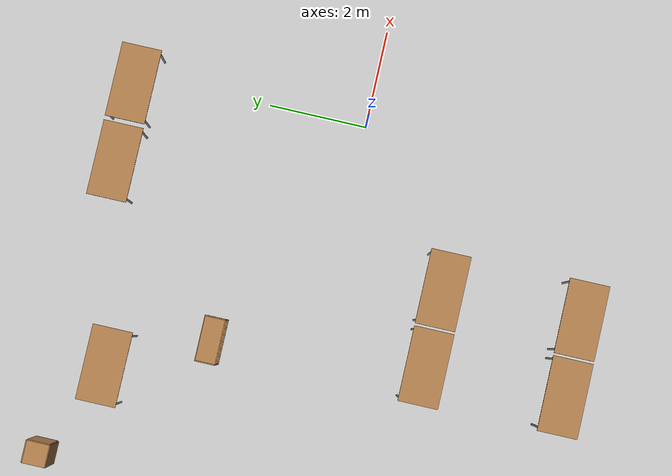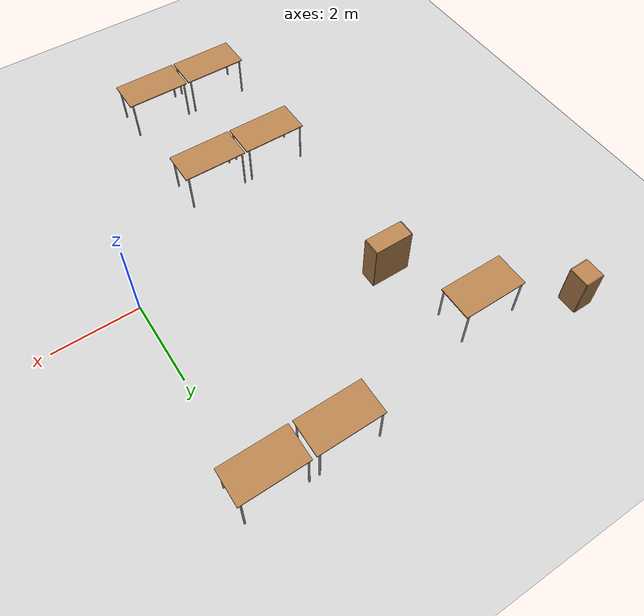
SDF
<sdf version="1.6">
 <world name="default">
  <model name="ground_plane">
   <static>1</static>
   <link name="link">
    <collision name="collision">
     <geometry><plane><normal>0 0 1</normal><size>100 100</size></plane></geometry>
     <surface>
      <contact><collide_bitmask>65535</collide_bitmask></contact>
      <friction><ode><mu>100</mu><mu2>50</mu2></ode></friction>
     </surface>
    </collision>
    <visual name="visual">
     <cast_shadows>0</cast_shadows>
     <geometry><plane><normal>0 0 1</normal><size>100 100</size></plane></geometry>
     <material>
      <script><uri>file://media/materials/scripts/gazebo.material</uri><name>Gazebo/Grey</name></script>
     </material>
    </visual>
   </link>
  </model>
  <model name="cabinet">
   <static>1</static>
   <link name="cabinet_bottom_plate">
    <inertial>
     <pose>0 0 -1 0 -0 0</pose>
     <inertia><ixx>2.05</ixx><ixy>0</ixy><ixz>0</ixz><iyy>2.05</iyy><iyz>0</iyz><izz>2.05</izz></inertia>
     <mass>25</mass>
    </inertial>
    <collision name="cabinet_bottom_plate_geom">
     <pose>0 0 0.01 0 -0 0</pose>
     <geometry><box><size>0.45 0.45 0.02</size></box></geometry>
    </collision>
    <visual name="cabinet_bottom_plate_geom_visual">
     <pose>0 0 0.01 0 -0 0</pose>
     <geometry><box><size>0.45 0.45 0.02</size></box></geometry>
     <material>
      <script><uri>file://media/materials/scripts/gazebo.material</uri><name>Gazebo/Wood</name></script>
     </material>
    </visual>
    <collision name="cabinet_bottom_plate_geom_cabinet_back_plate">
     <pose>0.235 0 0.51 0 -0 0</pose>
     <geometry><box><size>0.02 0.45 1.02</size></box></geometry>
    </collision>
    <visual name="cabinet_bottom_plate_geom_cabinet_back_plate_visual">
     <pose>0.235 0 0.51 0 -0 0</pose>
     <geometry><box><size>0.02 0.45 1.02</size></box></geometry>
     <material>
      <script><uri>file://media/materials/scripts/gazebo.material</uri><name>Gazebo/Wood</name></script>
     </material>
    </visual>
    <collision name="cabinet_bottom_plate_geom_cabinet_left_plate">
     <pose>0 0.235 0.51 0 -0 0</pose>
     <geometry><box><size>0.45 0.02 1.02</size></box></geometry>
    </collision>
    <visual name="cabinet_bottom_plate_geom_cabinet_left_plate_visual">
     <pose>0 0.235 0.51 0 -0 0</pose>
     <geometry><box><size>0.45 0.02 1.02</size></box></geometry>
     <material>
      <script><uri>file://media/materials/scripts/gazebo.material</uri><name>Gazebo/Wood</name></script>
     </material>
    </visual>
    <collision name="cabinet_bottom_plate_geom_cabinet_middle_plate">
     <pose>0 0 0.51 0 -0 0</pose>
     <geometry><box><size>0.45 0.45 0.02</size></box></geometry>
    </collision>
    <visual name="cabinet_bottom_plate_geom_cabinet_middle_plate_visual">
     <pose>0 0 0.51 0 -0 0</pose>
     <geometry><box><size>0.45 0.45 0.02</size></box></geometry>
     <material>
      <script><uri>file://media/materials/scripts/gazebo.material</uri><name>Gazebo/Wood</name></script>
     </material>
    </visual>
    <collision name="cabinet_bottom_plate_geom_cabinet_right_plate">
     <pose>0 -0.235 0.51 0 -0 0</pose>
     <geometry><box><size>0.45 0.02 1.02</size></box></geometry>
    </collision>
    <visual name="cabinet_bottom_plate_geom_cabinet_right_plate_visual">
     <pose>0 -0.235 0.51 0 -0 0</pose>
     <geometry><box><size>0.45 0.02 1.02</size></box></geometry>
     <material>
      <script><uri>file://media/materials/scripts/gazebo.material</uri><name>Gazebo/Wood</name></script>
     </material>
    </visual>
    <collision name="cabinet_bottom_plate_geom_cabinet_top_plate">
     <pose>0 0 1.01 0 -0 0</pose>
     <geometry><box><size>0.45 0.45 0.02</size></box></geometry>
    </collision>
    <visual name="cabinet_bottom_plate_geom_cabinet_top_plate_visual">
     <pose>0 0 1.01 0 -0 0</pose>
     <geometry><box><size>0.45 0.45 0.02</size></box></geometry>
     <material>
      <script><uri>file://media/materials/scripts/gazebo.material</uri><name>Gazebo/Wood</name></script>
     </material>
    </visual>
   </link>
   <pose>-7.79073 4.85276 0 0 -0 0</pose>
  </model>
  <model name="bookshelf">
   <static>1</static>
   <link name="link">
    <inertial><mass>1</mass></inertial>
    <collision name="back">
     <pose>0 0.005 0.6 0 -0 0</pose>
     <geometry><box><size>0.9 0.01 1.2</size></box></geometry>
    </collision>
    <visual name="visual1">
     <pose>0 0.005 0.6 0 -0 0</pose>
     <geometry><box><size>0.9 0.01 1.2</size></box></geometry>
     <material>
      <script><uri>file://media/materials/scripts/gazebo.material</uri><name>Gazebo/Wood</name></script>
     </material>
    </visual>
    <collision name="left_side">
     <pose>0.45 -0.195 0.6 0 -0 0</pose>
     <geometry><box><size>0.02 0.4 1.2</size></box></geometry>
    </collision>
    <visual name="visual2">
     <pose>0.45 -0.195 0.6 0 -0 0</pose>
     <geometry><box><size>0.02 0.4 1.2</size></box></geometry>
     <material>
      <script><uri>file://media/materials/scripts/gazebo.material</uri><name>Gazebo/Wood</name></script>
     </material>
    </visual>
    <collision name="right_side">
     <pose>-0.45 -0.195 0.6 0 -0 0</pose>
     <geometry><box><size>0.02 0.4 1.2</size></box></geometry>
    </collision>
    <visual name="visual3">
     <pose>-0.45 -0.195 0.6 0 -0 0</pose>
     <geometry><box><size>0.02 0.4 1.2</size></box></geometry>
     <material>
      <script><uri>file://media/materials/scripts/gazebo.material</uri><name>Gazebo/Wood</name></script>
     </material>
    </visual>
    <collision name="bottom">
     <pose>0 -0.195 0.03 0 -0 0</pose>
     <geometry><box><size>0.88 0.4 0.06</size></box></geometry>
    </collision>
    <visual name="visual4">
     <pose>0 -0.195 0.03 0 -0 0</pose>
     <geometry><box><size>0.88 0.4 0.06</size></box></geometry>
     <material>
      <script><uri>file://media/materials/scripts/gazebo.material</uri><name>Gazebo/Wood</name></script>
     </material>
    </visual>
    <collision name="top">
     <pose>0 -0.195 1.19 0 -0 0</pose>
     <geometry><box><size>0.88 0.4 0.02</size></box></geometry>
    </collision>
    <visual name="visual5">
     <pose>0 -0.195 1.19 0 -0 0</pose>
     <geometry><box><size>0.88 0.4 0.02</size></box></geometry>
     <material>
      <script><uri>file://media/materials/scripts/gazebo.material</uri><name>Gazebo/Wood</name></script>
     </material>
    </visual>
    <collision name="low_shelf">
     <pose>0 -0.195 0.43 0 -0 0</pose>
     <geometry><box><size>0.88 0.4 0.02</size></box></geometry>
    </collision>
    <visual name="visual6">
     <pose>0 -0.195 0.43 0 -0 0</pose>
     <geometry><box><size>0.88 0.4 0.02</size></box></geometry>
     <material>
      <script><uri>file://media/materials/scripts/gazebo.material</uri><name>Gazebo/Wood</name></script>
     </material>
    </visual>
    <collision name="high_shelf">
     <pose>0 -0.195 0.8 0 -0 0</pose>
     <geometry><box><size>0.88 0.4 0.02</size></box></geometry>
    </collision>
    <visual name="visual7">
     <pose>0 -0.195 0.8 0 -0 0</pose>
     <geometry><box><size>0.88 0.4 0.02</size></box></geometry>
     <material>
      <script><uri>file://media/materials/scripts/gazebo.material</uri><name>Gazebo/Wood</name></script>
     </material>
    </visual>
   </link>
   <pose>-4.88239 2.23385 0 0 -0 0</pose>
  </model>
  <model name="table">
   <static>1</static>
   <link name="link">
    <collision name="surface">
     <pose>0 0 1 0 -0 0</pose>
     <geometry><box><size>1.5 0.8 0.03</size></box></geometry>
     <surface><friction><ode><mu>0.6</mu><mu2>0.6</mu2></ode></friction></surface>
    </collision>
    <visual name="visual1">
     <pose>0 0 1 0 -0 0</pose>
     <geometry><box><size>1.5 0.8 0.03</size></box></geometry>
     <material>
      <script><uri>file://media/materials/scripts/gazebo.material</uri><name>Gazebo/Wood</name></script>
     </material>
    </visual>
    <collision name="front_left_leg">
     <pose>0.68 0.38 0.5 0 -0 0</pose>
     <geometry><cylinder><radius>0.02</radius><length>1</length></cylinder></geometry>
    </collision>
    <visual name="front_left_leg">
     <pose>0.68 0.38 0.5 0 -0 0</pose>
     <geometry><cylinder><radius>0.02</radius><length>1</length></cylinder></geometry>
     <material>
      <script><uri>file://media/materials/scripts/gazebo.material</uri><name>Gazebo/Grey</name></script>
     </material>
    </visual>
    <collision name="front_right_leg">
     <pose>0.68 -0.38 0.5 0 -0 0</pose>
     <geometry><cylinder><radius>0.02</radius><length>1</length></cylinder></geometry>
    </collision>
    <visual name="front_right_leg">
     <pose>0.68 -0.38 0.5 0 -0 0</pose>
     <geometry><cylinder><radius>0.02</radius><length>1</length></cylinder></geometry>
     <material>
      <script><uri>file://media/materials/scripts/gazebo.material</uri><name>Gazebo/Grey</name></script>
     </material>
    </visual>
    <collision name="back_right_leg">
     <pose>-0.68 -0.38 0.5 0 -0 0</pose>
     <geometry><cylinder><radius>0.02</radius><length>1</length></cylinder></geometry>
    </collision>
    <visual name="back_right_leg">
     <pose>-0.68 -0.38 0.5 0 -0 0</pose>
     <geometry><cylinder><radius>0.02</radius><length>1</length></cylinder></geometry>
     <material>
      <script><uri>file://media/materials/scripts/gazebo.material</uri><name>Gazebo/Grey</name></script>
     </material>
    </visual>
    <collision name="back_left_leg">
     <pose>-0.68 0.38 0.5 0 -0 0</pose>
     <geometry><cylinder><radius>0.02</radius><length>1</length></cylinder></geometry>
    </collision>
    <visual name="back_left_leg">
     <pose>-0.68 0.38 0.5 0 -0 0</pose>
     <geometry><cylinder><radius>0.02</radius><length>1</length></cylinder></geometry>
     <material>
      <script><uri>file://media/materials/scripts/gazebo.material</uri><name>Gazebo/Grey</name></script>
     </material>
    </visual>
   </link>
   <pose>-5.82965 3.95107 0 0 -0 0</pose>
  </model>
  <model name="table_0">
   <static>1</static>
   <link name="link">
    <collision name="surface">
     <pose>0 0 1 0 -0 0</pose>
     <geometry><box><size>1.5 0.8 0.03</size></box></geometry>
     <surface><friction><ode><mu>0.6</mu><mu2>0.6</mu2></ode></friction></surface>
    </collision>
    <visual name="visual1">
     <pose>0 0 1 0 -0 0</pose>
     <geometry><box><size>1.5 0.8 0.03</size></box></geometry>
     <material>
      <script><uri>file://media/materials/scripts/gazebo.material</uri><name>Gazebo/Wood</name></script>
     </material>
    </visual>
    <collision name="front_left_leg">
     <pose>0.68 0.38 0.5 0 -0 0</pose>
     <geometry><cylinder><radius>0.02</radius><length>1</length></cylinder></geometry>
    </collision>
    <visual name="front_left_leg">
     <pose>0.68 0.38 0.5 0 -0 0</pose>
     <geometry><cylinder><radius>0.02</radius><length>1</length></cylinder></geometry>
     <material>
      <script><uri>file://media/materials/scripts/gazebo.material</uri><name>Gazebo/Grey</name></script>
     </material>
    </visual>
    <collision name="front_right_leg">
     <pose>0.68 -0.38 0.5 0 -0 0</pose>
     <geometry><cylinder><radius>0.02</radius><length>1</length></cylinder></geometry>
    </collision>
    <visual name="front_right_leg">
     <pose>0.68 -0.38 0.5 0 -0 0</pose>
     <geometry><cylinder><radius>0.02</radius><length>1</length></cylinder></geometry>
     <material>
      <script><uri>file://media/materials/scripts/gazebo.material</uri><name>Gazebo/Grey</name></script>
     </material>
    </visual>
    <collision name="back_right_leg">
     <pose>-0.68 -0.38 0.5 0 -0 0</pose>
     <geometry><cylinder><radius>0.02</radius><length>1</length></cylinder></geometry>
    </collision>
    <visual name="back_right_leg">
     <pose>-0.68 -0.38 0.5 0 -0 0</pose>
     <geometry><cylinder><radius>0.02</radius><length>1</length></cylinder></geometry>
     <material>
      <script><uri>file://media/materials/scripts/gazebo.material</uri><name>Gazebo/Grey</name></script>
     </material>
    </visual>
    <collision name="back_left_leg">
     <pose>-0.68 0.38 0.5 0 -0 0</pose>
     <geometry><cylinder><radius>0.02</radius><length>1</length></cylinder></geometry>
    </collision>
    <visual name="back_left_leg">
     <pose>-0.68 0.38 0.5 0 -0 0</pose>
     <geometry><cylinder><radius>0.02</radius><length>1</length></cylinder></geometry>
     <material>
      <script><uri>file://media/materials/scripts/gazebo.material</uri><name>Gazebo/Grey</name></script>
     </material>
    </visual>
   </link>
   <pose>-0.288993 4.6714 0 0 -0 0</pose>
  </model>
  <model name="table_1">
   <static>1</static>
   <link name="link">
    <collision name="surface">
     <pose>0 0 1 0 -0 0</pose>
     <geometry><box><size>1.5 0.8 0.03</size></box></geometry>
     <surface><friction><ode><mu>0.6</mu><mu2>0.6</mu2></ode></friction></surface>
    </collision>
    <visual name="visual1">
     <pose>0 0 1 0 -0 0</pose>
     <geometry><box><size>1.5 0.8 0.03</size></box></geometry>
     <material>
      <script><uri>file://media/materials/scripts/gazebo.material</uri><name>Gazebo/Wood</name></script>
     </material>
    </visual>
    <collision name="front_left_leg">
     <pose>0.68 0.38 0.5 0 -0 0</pose>
     <geometry><cylinder><radius>0.02</radius><length>1</length></cylinder></geometry>
    </collision>
    <visual name="front_left_leg">
     <pose>0.68 0.38 0.5 0 -0 0</pose>
     <geometry><cylinder><radius>0.02</radius><length>1</length></cylinder></geometry>
     <material>
      <script><uri>file://media/materials/scripts/gazebo.material</uri><name>Gazebo/Grey</name></script>
     </material>
    </visual>
    <collision name="front_right_leg">
     <pose>0.68 -0.38 0.5 0 -0 0</pose>
     <geometry><cylinder><radius>0.02</radius><length>1</length></cylinder></geometry>
    </collision>
    <visual name="front_right_leg">
     <pose>0.68 -0.38 0.5 0 -0 0</pose>
     <geometry><cylinder><radius>0.02</radius><length>1</length></cylinder></geometry>
     <material>
      <script><uri>file://media/materials/scripts/gazebo.material</uri><name>Gazebo/Grey</name></script>
     </material>
    </visual>
    <collision name="back_right_leg">
     <pose>-0.68 -0.38 0.5 0 -0 0</pose>
     <geometry><cylinder><radius>0.02</radius><length>1</length></cylinder></geometry>
    </collision>
    <visual name="back_right_leg">
     <pose>-0.68 -0.38 0.5 0 -0 0</pose>
     <geometry><cylinder><radius>0.02</radius><length>1</length></cylinder></geometry>
     <material>
      <script><uri>file://media/materials/scripts/gazebo.material</uri><name>Gazebo/Grey</name></script>
     </material>
    </visual>
    <collision name="back_left_leg">
     <pose>-0.68 0.38 0.5 0 -0 0</pose>
     <geometry><cylinder><radius>0.02</radius><length>1</length></cylinder></geometry>
    </collision>
    <visual name="back_left_leg">
     <pose>-0.68 0.38 0.5 0 -0 0</pose>
     <geometry><cylinder><radius>0.02</radius><length>1</length></cylinder></geometry>
     <material>
      <script><uri>file://media/materials/scripts/gazebo.material</uri><name>Gazebo/Grey</name></script>
     </material>
    </visual>
   </link>
   <pose>-1.87609 4.67031 0 0 -0 0</pose>
  </model>
  <model name="table_2">
   <static>1</static>
   <link name="link">
    <collision name="surface">
     <pose>0 0 1 0 -0 0</pose>
     <geometry><box><size>1.5 0.8 0.03</size></box></geometry>
     <surface><friction><ode><mu>0.6</mu><mu2>0.6</mu2></ode></friction></surface>
    </collision>
    <visual name="visual1">
     <pose>0 0 1 0 -0 0</pose>
     <geometry><box><size>1.5 0.8 0.03</size></box></geometry>
     <material>
      <script><uri>file://media/materials/scripts/gazebo.material</uri><name>Gazebo/Wood</name></script>
     </material>
    </visual>
    <collision name="front_left_leg">
     <pose>0.68 0.38 0.5 0 -0 0</pose>
     <geometry><cylinder><radius>0.02</radius><length>1</length></cylinder></geometry>
    </collision>
    <visual name="front_left_leg">
     <pose>0.68 0.38 0.5 0 -0 0</pose>
     <geometry><cylinder><radius>0.02</radius><length>1</length></cylinder></geometry>
     <material>
      <script><uri>file://media/materials/scripts/gazebo.material</uri><name>Gazebo/Grey</name></script>
     </material>
    </visual>
    <collision name="front_right_leg">
     <pose>0.68 -0.38 0.5 0 -0 0</pose>
     <geometry><cylinder><radius>0.02</radius><length>1</length></cylinder></geometry>
    </collision>
    <visual name="front_right_leg">
     <pose>0.68 -0.38 0.5 0 -0 0</pose>
     <geometry><cylinder><radius>0.02</radius><length>1</length></cylinder></geometry>
     <material>
      <script><uri>file://media/materials/scripts/gazebo.material</uri><name>Gazebo/Grey</name></script>
     </material>
    </visual>
    <collision name="back_right_leg">
     <pose>-0.68 -0.38 0.5 0 -0 0</pose>
     <geometry><cylinder><radius>0.02</radius><length>1</length></cylinder></geometry>
    </collision>
    <visual name="back_right_leg">
     <pose>-0.68 -0.38 0.5 0 -0 0</pose>
     <geometry><cylinder><radius>0.02</radius><length>1</length></cylinder></geometry>
     <material>
      <script><uri>file://media/materials/scripts/gazebo.material</uri><name>Gazebo/Grey</name></script>
     </material>
    </visual>
    <collision name="back_left_leg">
     <pose>-0.68 0.38 0.5 0 -0 0</pose>
     <geometry><cylinder><radius>0.02</radius><length>1</length></cylinder></geometry>
    </collision>
    <visual name="back_left_leg">
     <pose>-0.68 0.38 0.5 0 -0 0</pose>
     <geometry><cylinder><radius>0.02</radius><length>1</length></cylinder></geometry>
     <material>
      <script><uri>file://media/materials/scripts/gazebo.material</uri><name>Gazebo/Grey</name></script>
     </material>
    </visual>
   </link>
   <pose>-4.46585 -2.17895 0 0 -0 0</pose>
  </model>
  <model name="table_3">
   <static>1</static>
   <link name="link">
    <collision name="surface">
     <pose>0 0 1 0 -0 0</pose>
     <geometry><box><size>1.5 0.8 0.03</size></box></geometry>
     <surface><friction><ode><mu>0.6</mu><mu2>0.6</mu2></ode></friction></surface>
    </collision>
    <visual name="visual1">
     <pose>0 0 1 0 -0 0</pose>
     <geometry><box><size>1.5 0.8 0.03</size></box></geometry>
     <material>
      <script><uri>file://media/materials/scripts/gazebo.material</uri><name>Gazebo/Wood</name></script>
     </material>
    </visual>
    <collision name="front_left_leg">
     <pose>0.68 0.38 0.5 0 -0 0</pose>
     <geometry><cylinder><radius>0.02</radius><length>1</length></cylinder></geometry>
    </collision>
    <visual name="front_left_leg">
     <pose>0.68 0.38 0.5 0 -0 0</pose>
     <geometry><cylinder><radius>0.02</radius><length>1</length></cylinder></geometry>
     <material>
      <script><uri>file://media/materials/scripts/gazebo.material</uri><name>Gazebo/Grey</name></script>
     </material>
    </visual>
    <collision name="front_right_leg">
     <pose>0.68 -0.38 0.5 0 -0 0</pose>
     <geometry><cylinder><radius>0.02</radius><length>1</length></cylinder></geometry>
    </collision>
    <visual name="front_right_leg">
     <pose>0.68 -0.38 0.5 0 -0 0</pose>
     <geometry><cylinder><radius>0.02</radius><length>1</length></cylinder></geometry>
     <material>
      <script><uri>file://media/materials/scripts/gazebo.material</uri><name>Gazebo/Grey</name></script>
     </material>
    </visual>
    <collision name="back_right_leg">
     <pose>-0.68 -0.38 0.5 0 -0 0</pose>
     <geometry><cylinder><radius>0.02</radius><length>1</length></cylinder></geometry>
    </collision>
    <visual name="back_right_leg">
     <pose>-0.68 -0.38 0.5 0 -0 0</pose>
     <geometry><cylinder><radius>0.02</radius><length>1</length></cylinder></geometry>
     <material>
      <script><uri>file://media/materials/scripts/gazebo.material</uri><name>Gazebo/Grey</name></script>
     </material>
    </visual>
    <collision name="back_left_leg">
     <pose>-0.68 0.38 0.5 0 -0 0</pose>
     <geometry><cylinder><radius>0.02</radius><length>1</length></cylinder></geometry>
    </collision>
    <visual name="back_left_leg">
     <pose>-0.68 0.38 0.5 0 -0 0</pose>
     <geometry><cylinder><radius>0.02</radius><length>1</length></cylinder></geometry>
     <material>
      <script><uri>file://media/materials/scripts/gazebo.material</uri><name>Gazebo/Grey</name></script>
     </material>
    </visual>
   </link>
   <pose>-2.91567 -2.17764 0 0 -0 0</pose>
  </model>
  <model name="table_4">
   <static>1</static>
   <link name="link">
    <collision name="surface">
     <pose>0 0 1 0 -0 0</pose>
     <geometry><box><size>1.5 0.8 0.03</size></box></geometry>
     <surface><friction><ode><mu>0.6</mu><mu2>0.6</mu2></ode></friction></surface>
    </collision>
    <visual name="visual1">
     <pose>0 0 1 0 -0 0</pose>
     <geometry><box><size>1.5 0.8 0.03</size></box></geometry>
     <material>
      <script><uri>file://media/materials/scripts/gazebo.material</uri><name>Gazebo/Wood</name></script>
     </material>
    </visual>
    <collision name="front_left_leg">
     <pose>0.68 0.38 0.5 0 -0 0</pose>
     <geometry><cylinder><radius>0.02</radius><length>1</length></cylinder></geometry>
    </collision>
    <visual name="front_left_leg">
     <pose>0.68 0.38 0.5 0 -0 0</pose>
     <geometry><cylinder><radius>0.02</radius><length>1</length></cylinder></geometry>
     <material>
      <script><uri>file://media/materials/scripts/gazebo.material</uri><name>Gazebo/Grey</name></script>
     </material>
    </visual>
    <collision name="front_right_leg">
     <pose>0.68 -0.38 0.5 0 -0 0</pose>
     <geometry><cylinder><radius>0.02</radius><length>1</length></cylinder></geometry>
    </collision>
    <visual name="front_right_leg">
     <pose>0.68 -0.38 0.5 0 -0 0</pose>
     <geometry><cylinder><radius>0.02</radius><length>1</length></cylinder></geometry>
     <material>
      <script><uri>file://media/materials/scripts/gazebo.material</uri><name>Gazebo/Grey</name></script>
     </material>
    </visual>
    <collision name="back_right_leg">
     <pose>-0.68 -0.38 0.5 0 -0 0</pose>
     <geometry><cylinder><radius>0.02</radius><length>1</length></cylinder></geometry>
    </collision>
    <visual name="back_right_leg">
     <pose>-0.68 -0.38 0.5 0 -0 0</pose>
     <geometry><cylinder><radius>0.02</radius><length>1</length></cylinder></geometry>
     <material>
      <script><uri>file://media/materials/scripts/gazebo.material</uri><name>Gazebo/Grey</name></script>
     </material>
    </visual>
    <collision name="back_left_leg">
     <pose>-0.68 0.38 0.5 0 -0 0</pose>
     <geometry><cylinder><radius>0.02</radius><length>1</length></cylinder></geometry>
    </collision>
    <visual name="back_left_leg">
     <pose>-0.68 0.38 0.5 0 -0 0</pose>
     <geometry><cylinder><radius>0.02</radius><length>1</length></cylinder></geometry>
     <material>
      <script><uri>file://media/materials/scripts/gazebo.material</uri><name>Gazebo/Grey</name></script>
     </material>
    </visual>
   </link>
   <pose>-4.42755 -4.94835 0 0 -0 0</pose>
  </model>
  <model name="table_5">
   <static>1</static>
   <link name="link">
    <collision name="surface">
     <pose>0 0 1 0 -0 0</pose>
     <geometry><box><size>1.5 0.8 0.03</size></box></geometry>
     <surface><friction><ode><mu>0.6</mu><mu2>0.6</mu2></ode></friction></surface>
    </collision>
    <visual name="visual1">
     <pose>0 0 1 0 -0 0</pose>
     <geometry><box><size>1.5 0.8 0.03</size></box></geometry>
     <material>
      <script><uri>file://media/materials/scripts/gazebo.material</uri><name>Gazebo/Wood</name></script>
     </material>
    </visual>
    <collision name="front_left_leg">
     <pose>0.68 0.38 0.5 0 -0 0</pose>
     <geometry><cylinder><radius>0.02</radius><length>1</length></cylinder></geometry>
    </collision>
    <visual name="front_left_leg">
     <pose>0.68 0.38 0.5 0 -0 0</pose>
     <geometry><cylinder><radius>0.02</radius><length>1</length></cylinder></geometry>
     <material>
      <script><uri>file://media/materials/scripts/gazebo.material</uri><name>Gazebo/Grey</name></script>
     </material>
    </visual>
    <collision name="front_right_leg">
     <pose>0.68 -0.38 0.5 0 -0 0</pose>
     <geometry><cylinder><radius>0.02</radius><length>1</length></cylinder></geometry>
    </collision>
    <visual name="front_right_leg">
     <pose>0.68 -0.38 0.5 0 -0 0</pose>
     <geometry><cylinder><radius>0.02</radius><length>1</length></cylinder></geometry>
     <material>
      <script><uri>file://media/materials/scripts/gazebo.material</uri><name>Gazebo/Grey</name></script>
     </material>
    </visual>
    <collision name="back_right_leg">
     <pose>-0.68 -0.38 0.5 0 -0 0</pose>
     <geometry><cylinder><radius>0.02</radius><length>1</length></cylinder></geometry>
    </collision>
    <visual name="back_right_leg">
     <pose>-0.68 -0.38 0.5 0 -0 0</pose>
     <geometry><cylinder><radius>0.02</radius><length>1</length></cylinder></geometry>
     <material>
      <script><uri>file://media/materials/scripts/gazebo.material</uri><name>Gazebo/Grey</name></script>
     </material>
    </visual>
    <collision name="back_left_leg">
     <pose>-0.68 0.38 0.5 0 -0 0</pose>
     <geometry><cylinder><radius>0.02</radius><length>1</length></cylinder></geometry>
    </collision>
    <visual name="back_left_leg">
     <pose>-0.68 0.38 0.5 0 -0 0</pose>
     <geometry><cylinder><radius>0.02</radius><length>1</length></cylinder></geometry>
     <material>
      <script><uri>file://media/materials/scripts/gazebo.material</uri><name>Gazebo/Grey</name></script>
     </material>
    </visual>
   </link>
   <pose>-2.87754 -4.94722 0 0 -0 0</pose>
  </model>
 </world>
</sdf>
